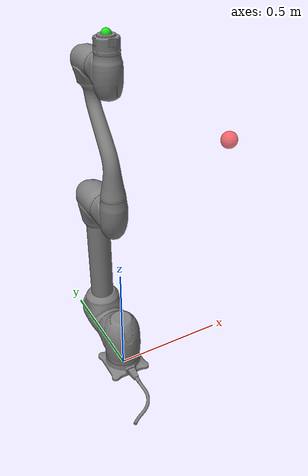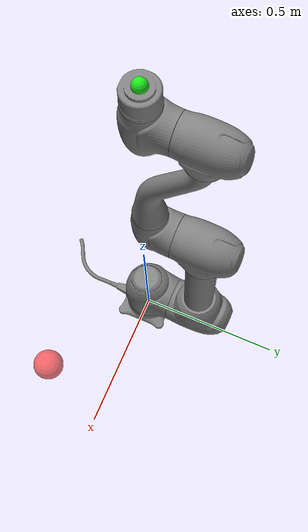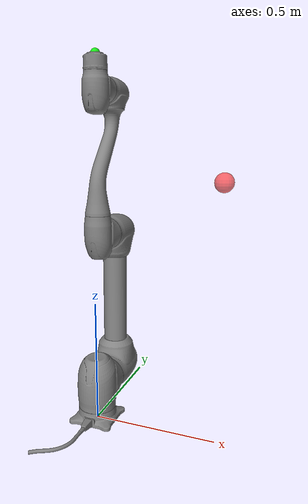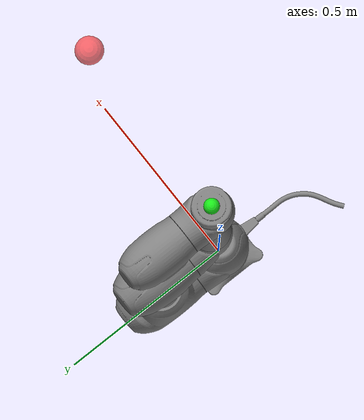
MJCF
<?xml version="1.0" encoding="utf-8"?>
<mujoco model="doosan_m1013">

  <compiler angle="radian" autolimits="true" meshdir="meshes/m1013_stl"/>

  <option timestep="0.002" gravity="0 0 -9.81" integrator="RK4"/>

  <visual>
    <headlight diffuse="0.7 0.7 0.7" ambient="0.4 0.4 0.4" specular="0.1 0.1 0.1"/>
    <rgba haze="0.15 0.25 0.35 1"/>
    <global azimuth="150" elevation="-25"/>
  </visual>

  <asset>
    <texture type="skybox" builtin="gradient"
             rgb1="0.4 0.6 0.8" rgb2="0.05 0.05 0.05" width="512" height="3072"/>
    <texture type="2d" name="groundplane" builtin="checker" mark="edge"
             rgb1="0.2 0.2 0.2" rgb2="0.1 0.1 0.1" markrgb="0.6 0.6 0.6"
             width="300" height="300"/>
    <material name="groundplane" texture="groundplane" texuniform="true"
              texrepeat="4 4" reflectance="0.1"/>
    <material name="target_mat" rgba="1.0 0.2 0.2 0.7"/>
    <material name="ee_mat"     rgba="0.1 0.9 0.1 1.0"/>

    <!-- M1013 White meshes (URDF scale=0.001) -->
    <mesh name="base_mesh"   file="MF1013_0_0.stl" scale="0.001 0.001 0.001"/>
    <mesh name="link1_mesh"  file="MF1013_1_0.stl" scale="0.001 0.001 0.001"/>
    <mesh name="link2_mesh0" file="MF1013_2_0.stl" scale="0.001 0.001 0.001"/>
    <mesh name="link2_mesh1" file="MF1013_2_1.stl" scale="0.001 0.001 0.001"/>
    <mesh name="link2_mesh2" file="MF1013_2_2.stl" scale="0.001 0.001 0.001"/>
    <mesh name="link3_mesh"  file="MF1013_3_0.stl" scale="0.001 0.001 0.001"/>
    <mesh name="link4_mesh0" file="MF1013_4_0.stl" scale="0.001 0.001 0.001"/>
    <mesh name="link4_mesh1" file="MF1013_4_1.stl" scale="0.001 0.001 0.001"/>
    <mesh name="link5_mesh"  file="MF1013_5_0.stl" scale="0.001 0.001 0.001"/>
    <mesh name="link6_mesh"  file="MF1013_6_0.stl" scale="0.001 0.001 0.001"/>
  </asset>

  <worldbody>
    <geom name="floor" size="0 0 0.05" type="plane" material="groundplane" rgba="0 0 0 0"/>
    <light pos="0 0 3" dir="0 0 -1" diffuse="0.8 0.8 0.8" specular="0.2 0.2 0.2"/>

    <!-- Target marker (mocap: 물리 영향 없이 위치 직접 지정) -->
    <body name="target" pos="0.5 0.0 1.0" mocap="true">
      <geom name="target_geom" type="sphere" size="0.035"
            material="target_mat" contype="0" conaffinity="0"/>
    </body>

    <!-- ── Base (URDF: base_link-base fixed joint at z=0.450) ── -->
    <body name="base_link" pos="0 0 0">
      <geom name="base_geom" type="mesh" mesh="base_mesh" contype="0" conaffinity="0"/>
      <!-- collision geoms disabled (no self-collision needed for RL) -->
      <geom name="base_col" type="cylinder" size="0.105 0.225" pos="0 0 0.225"
            contype="0" conaffinity="0" rgba="0 0 0 0"/>

      <!-- ── Link 1 ── joint1: xyz="0 0 0.1525" rpy="0 0 0" ── -->
      <body name="link1" pos="0 0 0.1525" quat="1 0 0 0">
        <joint name="joint1" type="hinge" axis="0 0 1"
               range="-6.2832 6.2832" damping="5.0" armature="0.4"/>
        <geom name="link1_geom" type="mesh" mesh="link1_mesh" contype="0" conaffinity="0"/>
        <geom name="link1_col" type="cylinder" size="0.09 0.17" pos="0 0 0.12"
              contype="0" conaffinity="0" rgba="0 0 0 0"/>

        <!-- ── Link 2 ── joint2: xyz="0 0.0345 0" rpy="0 -pi/2 -pi/2" ── -->
        <!-- quat from Rz(-pi/2)*Ry(-pi/2)*Rx(0) = (0.5, -0.5, -0.5, -0.5)  -->
        <body name="link2" pos="0 0.0345 0" quat="0.5 -0.5 -0.5 -0.5">
          <joint name="joint2" type="hinge" axis="0 0 1"
                 range="-6.2832 6.2832" damping="5.0" armature="0.4"/>
          <geom name="link2_geom0" type="mesh" mesh="link2_mesh0" contype="0" conaffinity="0"/>
          <geom name="link2_geom1" type="mesh" mesh="link2_mesh1" contype="0" conaffinity="0"/>
          <geom name="link2_geom2" type="mesh" mesh="link2_mesh2" contype="0" conaffinity="0"/>
          <!-- upper arm collision capsule (local X dir, 0→0.62m) -->
          <geom name="link2_col" type="capsule" fromto="0.05 0 0 0.57 0 0" size="0.06"
                contype="0" conaffinity="0" rgba="0 0 0 0"/>

          <!-- ── Link 3 ── joint3: xyz="0.62 0 0" rpy="0 0 pi/2" ── -->
          <!-- quat from Rz(pi/2)*Ry(0)*Rx(0) = (0.7071, 0, 0, 0.7071)     -->
          <body name="link3" pos="0.62 0 0" quat="0.7071 0 0 0.7071">
            <joint name="joint3" type="hinge" axis="0 0 1"
                   range="-2.7925 2.7925" damping="3.0" armature="0.3"/>
            <geom name="link3_geom" type="mesh" mesh="link3_mesh" contype="0" conaffinity="0"/>
            <!-- forearm collision capsule (local -Y dir, 0→-0.559m) -->
            <geom name="link3_col" type="capsule" fromto="0 -0.05 0 0 -0.51 0" size="0.055"
                  contype="0" conaffinity="0" rgba="0 0 0 0"/>

            <!-- ── Link 4 ── joint4: xyz="0 -0.559 0" rpy="pi/2 0 0" ── -->
            <!-- quat from Rz(0)*Ry(0)*Rx(pi/2) = (0.7071, 0.7071, 0, 0)   -->
            <body name="link4" pos="0 -0.559 0" quat="0.7071 0.7071 0 0">
              <joint name="joint4" type="hinge" axis="0 0 1"
                     range="-6.2832 6.2832" damping="1.5" armature="0.1"/>
              <geom name="link4_geom0" type="mesh" mesh="link4_mesh0" contype="0" conaffinity="0"/>
              <geom name="link4_geom1" type="mesh" mesh="link4_mesh1" contype="0" conaffinity="0"/>
              <geom name="link4_col" type="sphere" size="0.06"
                    contype="0" conaffinity="0" rgba="0 0 0 0"/>

              <!-- ── Link 5 ── joint5: xyz="0 0 0" rpy="-pi/2 0 0" ── -->
              <!-- quat from Rz(0)*Ry(0)*Rx(-pi/2) = (0.7071, -0.7071, 0, 0) -->
              <body name="link5" pos="0 0 0" quat="0.7071 -0.7071 0 0">
                <joint name="joint5" type="hinge" axis="0 0 1"
                       range="-6.2832 6.2832" damping="1.5" armature="0.1"/>
                <geom name="link5_geom" type="mesh" mesh="link5_mesh" contype="0" conaffinity="0"/>
                <geom name="link5_col" type="capsule" fromto="0 0 0 0 -0.11 0" size="0.04"
                      contype="0" conaffinity="0" rgba="0 0 0 0"/>

                <!-- ── Link 6 ── joint6: xyz="0 -0.121 0" rpy="pi/2 0 0" ── -->
                <!-- quat from Rz(0)*Ry(0)*Rx(pi/2) = (0.7071, 0.7071, 0, 0)  -->
                <body name="link6" pos="0 -0.121 0" quat="0.7071 0.7071 0 0">
                  <joint name="joint6" type="hinge" axis="0 0 1"
                         range="-6.2832 6.2832" damping="0.8" armature="0.05"/>
                  <geom name="link6_geom" type="mesh" mesh="link6_mesh" contype="0" conaffinity="0"/>
                  <geom name="link6_col" type="cylinder" size="0.04 0.03"
                        contype="0" conaffinity="0" rgba="0 0 0 0"/>

                  <!-- TCP (tool0): rpy="pi -pi/2 0" → just a site for EE tracking -->
                  <site name="ee_site" pos="0 0 0" size="0.015" rgba="0.1 0.9 0.1 1"/>
                  <geom name="ee_marker" type="sphere" size="0.018"
                        pos="0 0 0" material="ee_mat" contype="0" conaffinity="0"/>

                </body>
              </body>
            </body>
          </body>
        </body>
      </body>
    </body>
  </worldbody>

  <!-- Position actuators: ctrl = target angle, PD control internally -->
  <!-- kp 낮춤 (부드러운 응답), kv 높임 (진동 억제 & 감속) -->
  <actuator>
    <position name="act1" joint="joint1" kp="500"  kv="100" ctrlrange="-6.2832 6.2832"/>
    <position name="act2" joint="joint2" kp="700"  kv="140" ctrlrange="-6.2832 6.2832"/>
    <position name="act3" joint="joint3" kp="500"  kv="100" ctrlrange="-2.7925 2.7925"/>
    <position name="act4" joint="joint4" kp="200"  kv="50"  ctrlrange="-6.2832 6.2832"/>
    <position name="act5" joint="joint5" kp="200"  kv="50"  ctrlrange="-6.2832 6.2832"/>
    <position name="act6" joint="joint6" kp="70"   kv="20"  ctrlrange="-6.2832 6.2832"/>
  </actuator>

</mujoco>
